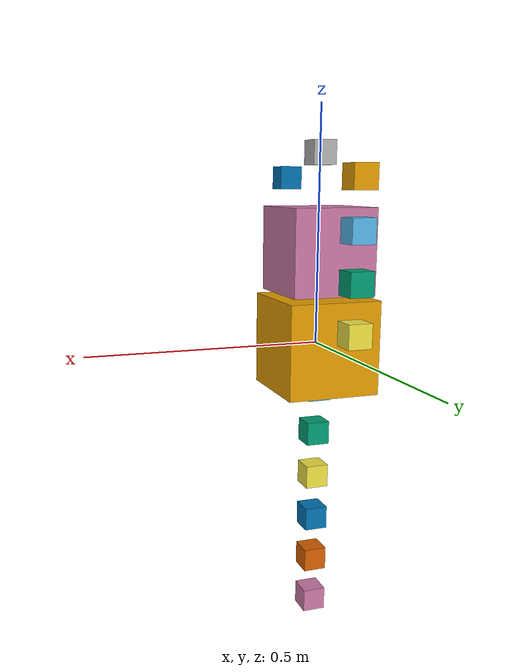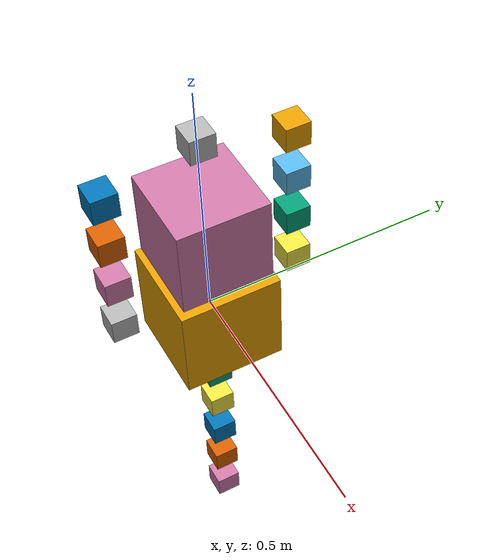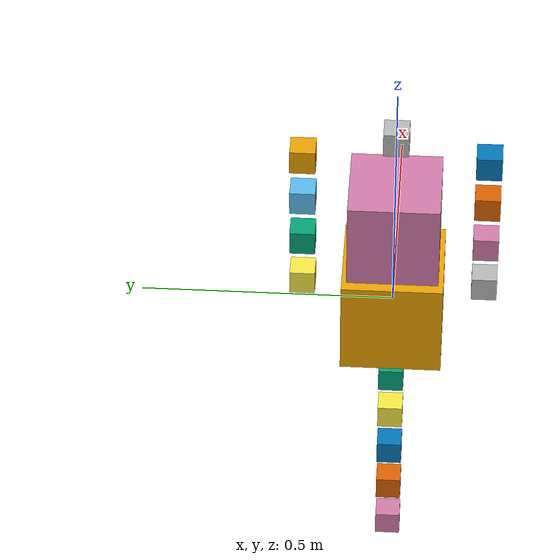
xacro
<?xml version="1.0"?>
<robot name="yidong" xmlns:xacro="http://www.ros.org/wiki/xacro">

  <!-- real | mujoco | mock -->
  <xacro:arg name="hardware" default="mock"/>
  <xacro:arg name="exipc_port" default="1"/>
  <xacro:arg name="shm_name" default="hhros2_motor_shm"/>
  <xacro:arg name="qos_config" default=""/>
  <!-- MuJoCo scene used when hardware:=mujoco (e.g. scene_stair.xml). -->
  <xacro:arg name="mujoco_model"
      default="package://hhros2_description/models/Yidong/mjcf/scene_safety_rope.xml"/>

  <xacro:include filename="$(find hhros2_description)/urdf/yidong.body.xacro"/>
  <xacro:include filename="$(find hhros2_description)/urdf/yidong.ros2_control.xacro"/>

  <xacro:yidong_body/>

  <xacro:yidong_ros2_control
      name="yidong_system"
      hardware="$(arg hardware)"
      exipc_port="$(arg exipc_port)"
      shm_name="$(arg shm_name)"
      qos_config="$(arg qos_config)"
      mujoco_model="$(arg mujoco_model)"/>

</robot>

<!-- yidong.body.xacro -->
<robot xmlns:xacro="http://www.ros.org/wiki/xacro">

  <xacro:property name="joint_effort" value="200.0"/>
  <xacro:property name="joint_velocity" value="20.0"/>
  <xacro:property name="joint_lower" value="-3.14"/>
  <xacro:property name="joint_upper" value="3.14"/>

  <xacro:macro name="link_box" params="name mass:=0.5 size:=0.05">
    <link name="${name}">
      <visual>
        <geometry><box size="${size} ${size} ${size}"/></geometry>
      </visual>
      <collision>
        <geometry><box size="${size} ${size} ${size}"/></geometry>
      </collision>
      <inertial>
        <mass value="${mass}"/>
        <inertia ixx="0.001" ixy="0.0" ixz="0.0" iyy="0.001" iyz="0.0" izz="0.001"/>
      </inertial>
    </link>
  </xacro:macro>

  <xacro:macro name="rev_joint" params="name parent child axis:='0 0 1' xyz:='0 0 -0.1'">
    <joint name="${name}" type="revolute">
      <parent link="${parent}"/>
      <child link="${child}"/>
      <origin xyz="${xyz}" rpy="0 0 0"/>
      <axis xyz="${axis}"/>
      <limit lower="${joint_lower}" upper="${joint_upper}"
             effort="${joint_effort}" velocity="${joint_velocity}"/>
      <dynamics damping="0.1" friction="0.0"/>
    </joint>
  </xacro:macro>

  <xacro:macro name="yidong_body">
    <!-- root / floating-base attach point -->
    <xacro:link_box name="base_link" mass="10.0" size="0.2"/>

    <!-- ===== Left leg ===== -->
    <xacro:link_box name="left_hip_pitch_link"/>
    <xacro:link_box name="left_hip_roll_link"/>
    <xacro:link_box name="left_hip_yaw_link"/>
    <xacro:link_box name="left_knee_link"/>
    <xacro:link_box name="left_ankle_pitch_link"/>
    <xacro:link_box name="left_foot_link"/>
    <xacro:rev_joint name="left_hip_pitch_joint" parent="base_link"        child="left_hip_pitch_link" axis="0 1 0"/>
    <xacro:rev_joint name="left_hip_roll_joint"  parent="left_hip_pitch_link" child="left_hip_roll_link"  axis="1 0 0"/>
    <xacro:rev_joint name="left_hip_yaw_joint"   parent="left_hip_roll_link"  child="left_hip_yaw_link"   axis="0 0 1"/>
    <xacro:rev_joint name="left_knee_joint"      parent="left_hip_yaw_link"   child="left_knee_link"      axis="0 1 0"/>
    <xacro:rev_joint name="left_ankle_pitch_joint"   parent="left_knee_link"      child="left_ankle_pitch_link" axis="0 1 0"/>
    <xacro:rev_joint name="left_ankle_roll_joint"    parent="left_ankle_pitch_link" child="left_foot_link"     axis="1 0 0"/>

    <!-- ===== Right leg ===== -->
    <xacro:link_box name="right_hip_pitch_link"/>
    <xacro:link_box name="right_hip_roll_link"/>
    <xacro:link_box name="right_hip_yaw_link"/>
    <xacro:link_box name="right_knee_link"/>
    <xacro:link_box name="right_ankle_pitch_link"/>
    <xacro:link_box name="right_foot_link"/>
    <xacro:rev_joint name="right_hip_pitch_joint" parent="base_link"          child="right_hip_pitch_link" axis="0 1 0"/>
    <xacro:rev_joint name="right_hip_roll_joint"  parent="right_hip_pitch_link" child="right_hip_roll_link" axis="1 0 0"/>
    <xacro:rev_joint name="right_hip_yaw_joint"   parent="right_hip_roll_link"  child="right_hip_yaw_link"  axis="0 0 1"/>
    <xacro:rev_joint name="right_knee_joint"      parent="right_hip_yaw_link"   child="right_knee_link"     axis="0 1 0"/>
    <xacro:rev_joint name="right_ankle_pitch_joint"   parent="right_knee_link"       child="right_ankle_pitch_link" axis="0 1 0"/>
    <xacro:rev_joint name="right_ankle_roll_joint"    parent="right_ankle_pitch_link" child="right_foot_link"    axis="1 0 0"/>

    <!-- ===== Waist ===== -->
    <xacro:link_box name="waist_yaw_link"/>
    <xacro:link_box name="torso_link" mass="8.0" size="0.18"/>
    <xacro:rev_joint name="waist_yaw_joint"   parent="base_link"      child="waist_yaw_link" axis="0 0 1" xyz="0 0 0.1"/>
    <xacro:rev_joint name="waist_pitch_joint" parent="waist_yaw_link" child="torso_link"     axis="0 1 0" xyz="0 0 0.1"/>

    <!-- ===== Head ===== -->
    <xacro:link_box name="head_link"/>
    <xacro:rev_joint name="head_yaw_joint" parent="torso_link" child="head_link" axis="0 0 1" xyz="0 0 0.2"/>

    <!-- ===== Left arm ===== -->
    <xacro:link_box name="left_shoulder_pitch_link"/>
    <xacro:link_box name="left_shoulder_roll_link"/>
    <xacro:link_box name="left_shoulder_yaw_link"/>
    <xacro:link_box name="left_elbow_link"/>
    <xacro:rev_joint name="left_shoulder_pitch_joint" parent="torso_link"               child="left_shoulder_pitch_link" axis="0 1 0" xyz="0 0.18 0.15"/>
    <xacro:rev_joint name="left_shoulder_roll_joint"  parent="left_shoulder_pitch_link" child="left_shoulder_roll_link"  axis="1 0 0"/>
    <xacro:rev_joint name="left_shoulder_yaw_joint"   parent="left_shoulder_roll_link"  child="left_shoulder_yaw_link"   axis="0 0 1"/>
    <xacro:rev_joint name="left_elbow_joint"          parent="left_shoulder_yaw_link"   child="left_elbow_link"          axis="0 1 0"/>

    <!-- ===== Right arm ===== -->
    <xacro:link_box name="right_shoulder_pitch_link"/>
    <xacro:link_box name="right_shoulder_roll_link"/>
    <xacro:link_box name="right_shoulder_yaw_link"/>
    <xacro:link_box name="right_elbow_link"/>
    <xacro:rev_joint name="right_shoulder_pitch_joint" parent="torso_link"                child="right_shoulder_pitch_link" axis="0 1 0" xyz="0 -0.18 0.15"/>
    <xacro:rev_joint name="right_shoulder_roll_joint"  parent="right_shoulder_pitch_link" child="right_shoulder_roll_link"  axis="1 0 0"/>
    <xacro:rev_joint name="right_shoulder_yaw_joint"   parent="right_shoulder_roll_link"  child="right_shoulder_yaw_link"   axis="0 0 1"/>
    <xacro:rev_joint name="right_elbow_joint"          parent="right_shoulder_yaw_link"   child="right_elbow_link"          axis="0 1 0"/>

    <!-- IMU mount frame (xsens MTi) -->
    <xacro:link_box name="imu_link" mass="0.05" size="0.02"/>
    <joint name="imu_joint" type="fixed">
      <parent link="torso_link"/>
      <child link="imu_link"/>
      <origin xyz="0 0 0.05" rpy="0 0 0"/>
    </joint>
  </xacro:macro>
</robot>
